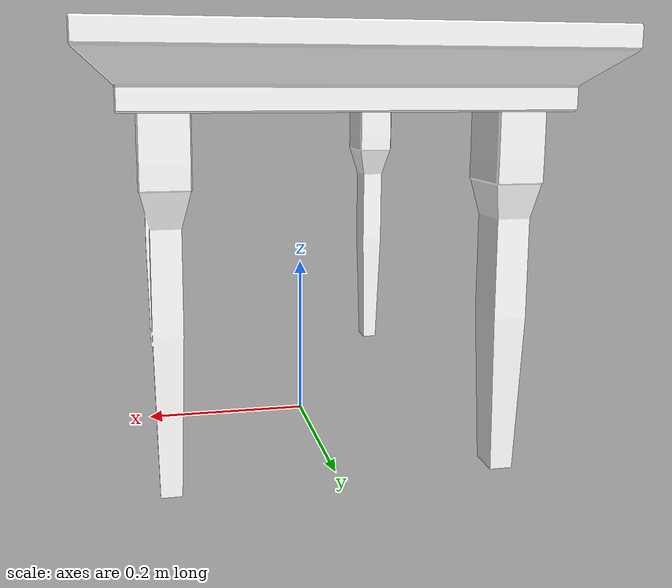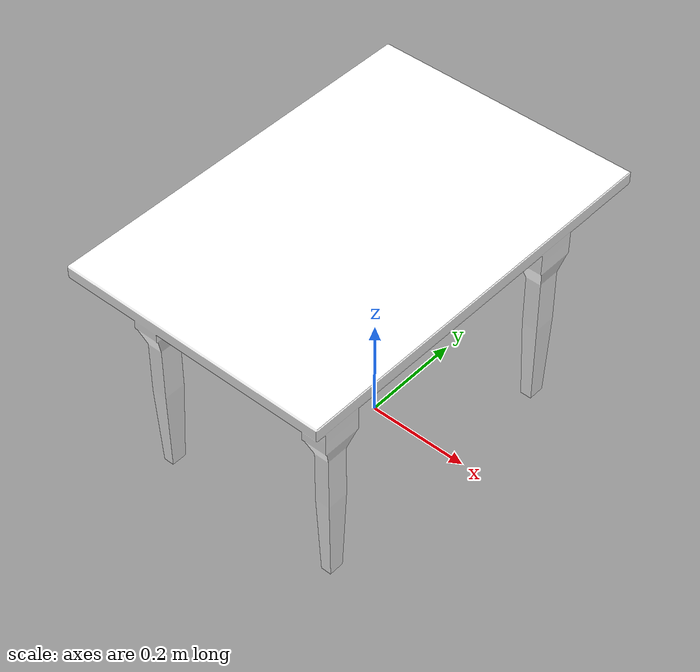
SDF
<?xml version="1.0" ?>
<sdf version="1.5">
  <model name="table_marble">
    <static>true</static>
    <pose>0 0 0.324 0 0 0</pose>
    <link name="link">
      <collision name="collision">
        <geometry>
          <mesh>
            <uri>meshes/table_lightmap.dae</uri>
            <scale>0.05 0.1 0.125</scale>
          </mesh>
        </geometry>
      </collision>
      <visual name="visual">
        <geometry>
          <mesh>
            <uri>meshes/table_lightmap.dae</uri>
            <scale>0.05 0.1 0.125</scale>
          </mesh>
        </geometry>
        <material>
          <pbr>
            <metal>
              <albedo_map>textures/marble.png</albedo_map>
            </metal>
          </pbr>
          <ambient>1 1 1 1</ambient>
          <diffuse>1 1 1 1</diffuse>
          <specular>1 1 1 1</specular>
          <emissive>0 0 0 1</emissive>
        </material>
      </visual>
    </link>
  </model>
</sdf>
